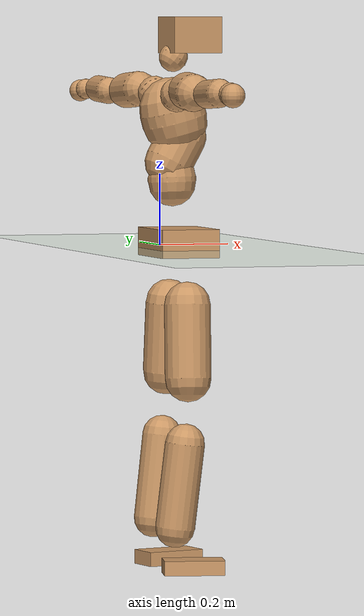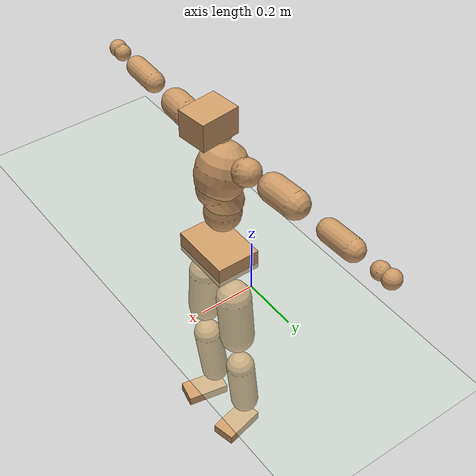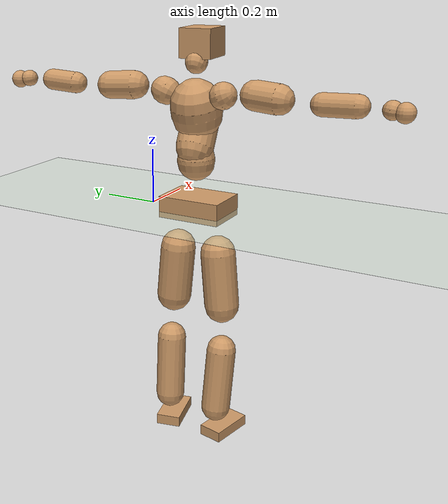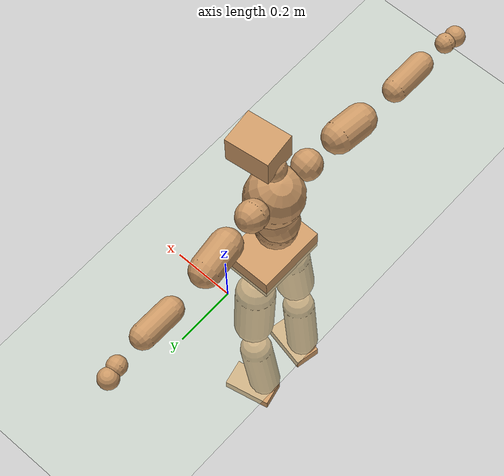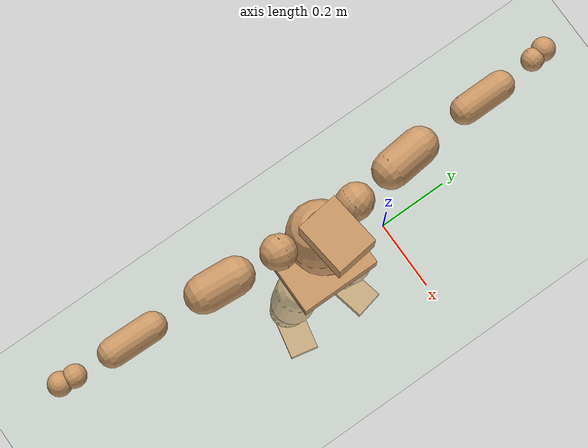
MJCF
<mujoco model="humanoid">
  <compiler coordinate="local" angle="radian"/>
  <default>
    <joint damping="0.0" armature="0.01" stiffness="0.0" limited="true"/>
    <geom conaffinity="1" condim="3" contype="7" margin="0.001" rgba="0.8 0.6 .4 1"/>
  </default>
  <asset>
    <texture type="skybox" builtin="gradient" rgb1=".4 .5 .6" rgb2="0 0 0" width="100" height="100"/>
    <texture builtin="flat" height="1278" mark="cross" markrgb="1 1 1" name="texgeom" random="0.01" rgb1="0.8 0.6 0.4" rgb2="0.8 0.6 0.4" type="cube" width="127"/>
    <texture builtin="checker" height="100" name="texplane" rgb1="0 0 0" rgb2="0.8 0.8 0.8" type="2d" width="100"/>
    <material name="MatPlane" reflectance="0.5" shininess="1" specular="1" texrepeat="60 60" texture="texplane"/>
    <material name="geom" texture="texgeom" texuniform="true"/>
  </asset>
  <worldbody>
    <light cutoff="100" diffuse="1 1 1" dir="-0 0 -1.3" directional="true" exponent="1" pos="0 0 1.3" specular=".1 .1 .1"/>
    <geom conaffinity="1" condim="3" name="floor" pos="0 0 0" rgba="0.8 0.9 0.8 1" size="100 100 .2" type="plane" material="MatPlane"/>
    <body name="Pelvis" pos="0.0002 -0.1942 0.0289">
      <freejoint name="Pelvis"/>
      <geom type="box" contype="1" conaffinity="1" density="5359.374777" pos="-0.0057 -0.0000 -0.0125" size="0.0824 0.117 0.0392" quat="1.0000 0.0000 0.0000 0.0000" name="Pelvis"/>
      <body name="L_Hip" pos="-0.0072 0.0747 -0.0891">
        <joint name="L_Hip_x" type="hinge" pos="0 0 0" axis="1 0 0" stiffness="1600" damping="160" armature="0.02" range="-180.0000 180.0000"/>
        <joint name="L_Hip_y" type="hinge" pos="0 0 0" axis="0 1 0" stiffness="1600" damping="160" armature="0.02" range="-180.0000 180.0000"/>
        <joint name="L_Hip_z" type="hinge" pos="0 0 0" axis="0 0 1" stiffness="1600" damping="160" armature="0.02" range="-180.0000 180.0000"/>
        <geom type="capsule" contype="1" conaffinity="1" density="2040.816327" size="0.0649" fromto="-0.0012 0.0083 -0.0945 -0.0037 0.0254 -0.2886" name="L_Hip"/>
        <body name="L_Knee" pos="-0.0049 0.0338 -0.3831">
          <joint name="L_Knee_x" type="hinge" pos="0 0 0" axis="1 0 0" stiffness="1600" damping="160" armature="0.02" range="-180.0000 180.0000"/>
          <joint name="L_Knee_y" type="hinge" pos="0 0 0" axis="0 1 0" stiffness="1600" damping="160" armature="0.02" range="-180.0000 180.0000"/>
          <joint name="L_Knee_z" type="hinge" pos="0 0 0" axis="0 0 1" stiffness="1600" damping="160" armature="0.02" range="-180.0000 180.0000"/>
          <geom type="capsule" contype="1" conaffinity="1" density="1234.567901" size="0.0545" fromto="-0.0097 -0.0023 -0.0840 -0.0364 -0.0086 -0.3167" name="L_Knee"/>
          <body name="L_Ankle" pos="-0.0461 -0.0109 -0.4006">
            <joint name="L_Ankle_x" type="hinge" pos="0 0 0" axis="1 0 0" stiffness="1600" damping="160" armature="0.02" range="-180.0000 180.0000"/>
            <joint name="L_Ankle_y" type="hinge" pos="0 0 0" axis="0 1 0" stiffness="1600" damping="160" armature="0.02" range="-180.0000 180.0000"/>
            <joint name="L_Ankle_z" type="hinge" pos="0 0 0" axis="0 0 1" stiffness="1600" damping="160" armature="0.02" range="-180.0000 180.0000"/>
            <geom type="box" contype="1" conaffinity="1" density="1000.000043" pos="0.0577 0.0127 -0.0280" size="0.0831 0.046 0.02" quat="0.9941 0.0000 0.0000 0.1084" name="L_Ankle"/>
            <body name="L_Toe" pos="0.1155 0.0255 -0.0561">
              <joint name="L_Toe_x" type="hinge" pos="0 0 0" axis="1 0 0" stiffness="1000" damping="100" armature="0.02" range="-180.0000 180.0000"/>
              <joint name="L_Toe_y" type="hinge" pos="0 0 0" axis="0 1 0" stiffness="1000" damping="100" armature="0.02" range="-180.0000 180.0000"/>
              <joint name="L_Toe_z" type="hinge" pos="0 0 0" axis="0 0 1" stiffness="1000" damping="100" armature="0.02" range="-180.0000 180.0000"/>
              <geom type="box" contype="1" conaffinity="1" density="8596198.526598" pos="0.0000 0.0000 0.0281" size="0.0009 0.0023 0.001" quat="0.9934 0.0000 0.0000 0.1146" name="L_Toe"/>
            </body>
          </body>
        </body>
      </body>
      <body name="R_Hip" pos="-0.0041 -0.0728 -0.088">
        <joint name="R_Hip_x" type="hinge" pos="0 0 0" axis="1 0 0" stiffness="1600" damping="160" armature="0.02" range="-180.0000 180.0000"/>
        <joint name="R_Hip_y" type="hinge" pos="0 0 0" axis="0 1 0" stiffness="1600" damping="160" armature="0.02" range="-180.0000 180.0000"/>
        <joint name="R_Hip_z" type="hinge" pos="0 0 0" axis="0 0 1" stiffness="1600" damping="160" armature="0.02" range="-180.0000 180.0000"/>
        <geom type="capsule" contype="1" conaffinity="1" density="2040.816327" size="0.0641" fromto="-0.0018 -0.0094 -0.0936 -0.0057 -0.0298 -0.2963" name="R_Hip"/>
        <body name="R_Knee" pos="-0.0075 -0.0392 -0.3899">
          <joint name="R_Knee_x" type="hinge" pos="0 0 0" axis="1 0 0" stiffness="1600" damping="160" armature="0.02" range="-180.0000 180.0000"/>
          <joint name="R_Knee_y" type="hinge" pos="0 0 0" axis="0 1 0" stiffness="1600" damping="160" armature="0.02" range="-180.0000 180.0000"/>
          <joint name="R_Knee_z" type="hinge" pos="0 0 0" axis="0 0 1" stiffness="1600" damping="160" armature="0.02" range="-180.0000 180.0000"/>
          <geom type="capsule" contype="1" conaffinity="1" density="1234.567901" size="0.0547" fromto="-0.0093 0.0028 -0.0842 -0.0352 0.0107 -0.3174" name="R_Knee"/>
          <body name="R_Ankle" pos="-0.0446 0.0135 -0.4016">
            <joint name="R_Ankle_x" type="hinge" pos="0 0 0" axis="1 0 0" stiffness="1600" damping="160" armature="0.02" range="-180.0000 180.0000"/>
            <joint name="R_Ankle_y" type="hinge" pos="0 0 0" axis="0 1 0" stiffness="1600" damping="160" armature="0.02" range="-180.0000 180.0000"/>
            <joint name="R_Ankle_z" type="hinge" pos="0 0 0" axis="0 0 1" stiffness="1600" damping="160" armature="0.02" range="-180.0000 180.0000"/>
            <geom type="box" contype="1" conaffinity="1" density="999.999989" pos="0.0594 -0.0122 -0.0242" size="0.0838 0.045 0.0203" quat="0.9948 0.0000 0.0000 -0.1014" name="R_Ankle"/>
            <body name="R_Toe" pos="0.1187 -0.0245 -0.0484">
              <joint name="R_Toe_x" type="hinge" pos="0 0 0" axis="1 0 0" stiffness="1000" damping="100" armature="0.02" range="-180.0000 180.0000"/>
              <joint name="R_Toe_y" type="hinge" pos="0 0 0" axis="0 1 0" stiffness="1000" damping="100" armature="0.02" range="-180.0000 180.0000"/>
              <joint name="R_Toe_z" type="hinge" pos="0 0 0" axis="0 0 1" stiffness="1000" damping="100" armature="0.02" range="-180.0000 180.0000"/>
              <geom type="box" contype="1" conaffinity="1" density="8506774.189372" pos="0.0000 0.0000 0.0255" size="0.0008 0.0022 0.0011" quat="0.9958 0.0000 0.0000 -0.0918" name="R_Toe"/>
            </body>
          </body>
        </body>
      </body>
      <body name="Torso" pos="-0.0232 -0.002 0.102">
        <joint name="Torso_x" type="hinge" pos="0 0 0" axis="1 0 0" stiffness="2000" damping="200" armature="0.02" range="-180.0000 180.0000"/>
        <joint name="Torso_y" type="hinge" pos="0 0 0" axis="0 1 0" stiffness="2000" damping="200" armature="0.02" range="-180.0000 180.0000"/>
        <joint name="Torso_z" type="hinge" pos="0 0 0" axis="0 0 1" stiffness="2000" damping="200" armature="0.02" range="-180.0000 180.0000"/>
        <geom type="capsule" contype="1" conaffinity="1" density="2040.816327" size="0.067" fromto="-0.0021 0.0014 0.0670 -0.0017 0.0011 0.0526" name="Torso"/>
        <body name="Spine" pos="-0.0038 0.0025 0.1196">
          <joint name="Spine_x" type="hinge" pos="0 0 0" axis="1 0 0" stiffness="2000" damping="200" armature="0.02" range="-180.0000 180.0000"/>
          <joint name="Spine_y" type="hinge" pos="0 0 0" axis="0 1 0" stiffness="2000" damping="200" armature="0.02" range="-180.0000 180.0000"/>
          <joint name="Spine_z" type="hinge" pos="0 0 0" axis="0 0 1" stiffness="2000" damping="200" armature="0.02" range="-180.0000 180.0000"/>
          <geom type="capsule" contype="1" conaffinity="1" density="2040.816327" size="0.0671" fromto="0.0326 0.0018 0.0586 -0.0070 -0.0004 -0.0126" name="Spine"/>
          <body name="Chest" pos="0.0256 0.0014 0.046">
            <joint name="Chest_x" type="hinge" pos="0 0 0" axis="1 0 0" stiffness="2000" damping="200" armature="0.02" range="-180.0000 180.0000"/>
            <joint name="Chest_y" type="hinge" pos="0 0 0" axis="0 1 0" stiffness="2000" damping="200" armature="0.02" range="-180.0000 180.0000"/>
            <joint name="Chest_z" type="hinge" pos="0 0 0" axis="0 0 1" stiffness="2000" damping="200" armature="0.02" range="-180.0000 180.0000"/>
            <geom type="capsule" contype="1" conaffinity="1" density="2040.816327" size="0.0905" fromto="-0.0239 -0.0009 0.0872 -0.0150 -0.0006 0.0549" name="Chest"/>
            <body name="Neck" pos="-0.0439 -0.0024 0.2012">
              <joint name="Neck_x" type="hinge" pos="0 0 0" axis="1 0 0" stiffness="1000" damping="100" armature="0.02" range="-180.0000 180.0000"/>
              <joint name="Neck_y" type="hinge" pos="0 0 0" axis="0 1 0" stiffness="1000" damping="100" armature="0.02" range="-180.0000 180.0000"/>
              <joint name="Neck_z" type="hinge" pos="0 0 0" axis="0 0 1" stiffness="1000" damping="100" armature="0.02" range="-180.0000 180.0000"/>
              <geom type="capsule" contype="1" conaffinity="1" density="1000" size="0.0393" fromto="0.0239 0.0020 0.0296 0.0251 0.0021 0.0312" name="Neck"/>
              <body name="Head" pos="0.049 0.0041 0.0608">
                <joint name="Head_x" type="hinge" pos="0 0 0" axis="1 0 0" stiffness="1000" damping="100" armature="0.02" range="-180.0000 180.0000"/>
                <joint name="Head_y" type="hinge" pos="0 0 0" axis="0 1 0" stiffness="1000" damping="100" armature="0.02" range="-180.0000 180.0000"/>
                <joint name="Head_z" type="hinge" pos="0 0 0" axis="0 0 1" stiffness="1000" damping="100" armature="0.02" range="-180.0000 180.0000"/>
                <geom type="box" contype="1" conaffinity="1" density="2250.000237" pos="0.0255 0.0031 0.0314" size="0.0721 0.0567 0.0501" quat="0.9982 0.0000 0.0000 0.0596" name="Head"/>
              </body>
            </body>
            <body name="L_Thorax" pos="-0.0338 0.0711 0.1133">
              <joint name="L_Thorax_x" type="hinge" pos="0 0 0" axis="1 0 0" stiffness="1000" damping="100" armature="0.02" range="-180.0000 180.0000"/>
              <joint name="L_Thorax_y" type="hinge" pos="0 0 0" axis="0 1 0" stiffness="1000" damping="100" armature="0.02" range="-180.0000 180.0000"/>
              <joint name="L_Thorax_z" type="hinge" pos="0 0 0" axis="0 0 1" stiffness="1000" damping="100" armature="0.02" range="-180.0000 180.0000"/>
              <geom type="capsule" contype="1" conaffinity="1" density="1000" size="0.0479" fromto="-0.0035 0.0440 0.0185 -0.0028 0.0357 0.0150" name="L_Thorax"/>
              <body name="L_Shoulder" pos="-0.0063 0.0797 0.0336">
                <joint name="L_Shoulder_x" type="hinge" pos="0 0 0" axis="1 0 0" stiffness="1000" damping="100" armature="0.02" range="-720.0000 720.0000"/>
                <joint name="L_Shoulder_y" type="hinge" pos="0 0 0" axis="0 1 0" stiffness="1000" damping="100" armature="0.02" range="-720.0000 720.0000"/>
                <joint name="L_Shoulder_z" type="hinge" pos="0 0 0" axis="0 0 1" stiffness="1000" damping="100" armature="0.02" range="-720.0000 720.0000"/>
                <geom type="capsule" contype="1" conaffinity="1" density="1000" size="0.0497" fromto="-0.0086 0.0791 -0.0046 -0.0189 0.1730 -0.0100" name="L_Shoulder"/>
                <body name="L_Elbow" pos="-0.0275 0.2521 -0.0146">
                  <joint name="L_Elbow_x" type="hinge" pos="0 0 0" axis="1 0 0" stiffness="1000" damping="100" armature="0.02" range="-720.0000 720.0000"/>
                  <joint name="L_Elbow_y" type="hinge" pos="0 0 0" axis="0 1 0" stiffness="1000" damping="100" armature="0.02" range="-720.0000 720.0000"/>
                  <joint name="L_Elbow_z" type="hinge" pos="0 0 0" axis="0 0 1" stiffness="1000" damping="100" armature="0.02" range="-720.0000 720.0000"/>
                  <geom type="capsule" contype="1" conaffinity="1" density="1000" size="0.0382" fromto="-0.0000 0.0681 0.0029 -0.0001 0.1750 0.0076" name="L_Elbow"/>
                  <body name="L_Wrist" pos="-0.0001 0.2431 0.0105">
                    <joint name="L_Wrist_x" type="hinge" pos="0 0 0" axis="1 0 0" stiffness="600" damping="60" armature="0.02" range="-180.0000 180.0000"/>
                    <joint name="L_Wrist_y" type="hinge" pos="0 0 0" axis="0 1 0" stiffness="600" damping="60" armature="0.02" range="-180.0000 180.0000"/>
                    <joint name="L_Wrist_z" type="hinge" pos="0 0 0" axis="0 0 1" stiffness="600" damping="60" armature="0.02" range="-180.0000 180.0000"/>
                    <geom type="capsule" contype="1" conaffinity="1" density="1000" size="0.0295" fromto="-0.0064 0.0382 -0.0048 -0.0068 0.0402 -0.0050" name="L_Wrist"/>
                    <body name="L_Hand" pos="-0.0132 0.0784 -0.0098">
                      <joint name="L_Hand_x" type="hinge" pos="0 0 0" axis="1 0 0" stiffness="600" damping="60" armature="0.02" range="-180.0000 180.0000"/>
                      <joint name="L_Hand_y" type="hinge" pos="0 0 0" axis="0 1 0" stiffness="600" damping="60" armature="0.02" range="-180.0000 180.0000"/>
                      <joint name="L_Hand_z" type="hinge" pos="0 0 0" axis="0 0 1" stiffness="600" damping="60" armature="0.02" range="-180.0000 180.0000"/>
                      <geom type="sphere" contype="1" conaffinity="1" density="1000" size="0.0316" pos="0.0000 0.0000 0.0000" name="L_Hand"/>
                    </body>
                  </body>
                </body>
              </body>
            </body>
            <body name="R_Thorax" pos="-0.0391 -0.0732 0.112">
              <joint name="R_Thorax_x" type="hinge" pos="0 0 0" axis="1 0 0" stiffness="1000" damping="100" armature="0.02" range="-180.0000 180.0000"/>
              <joint name="R_Thorax_y" type="hinge" pos="0 0 0" axis="0 1 0" stiffness="1000" damping="100" armature="0.02" range="-180.0000 180.0000"/>
              <joint name="R_Thorax_z" type="hinge" pos="0 0 0" axis="0 0 1" stiffness="1000" damping="100" armature="0.02" range="-180.0000 180.0000"/>
              <geom type="capsule" contype="1" conaffinity="1" density="1000" size="0.0469" fromto="-0.0042 -0.0432 0.0178 -0.0040 -0.0406 0.0167" name="R_Thorax"/>
              <body name="R_Shoulder" pos="-0.0082 -0.0838 0.0344">
                <joint name="R_Shoulder_x" type="hinge" pos="0 0 0" axis="1 0 0" stiffness="1000" damping="100" armature="0.02" range="-720.0000 720.0000"/>
                <joint name="R_Shoulder_y" type="hinge" pos="0 0 0" axis="0 1 0" stiffness="1000" damping="100" armature="0.02" range="-720.0000 720.0000"/>
                <joint name="R_Shoulder_z" type="hinge" pos="0 0 0" axis="0 0 1" stiffness="1000" damping="100" armature="0.02" range="-720.0000 720.0000"/>
                <geom type="capsule" contype="1" conaffinity="1" density="1000" size="0.0507" fromto="-0.0071 -0.0803 -0.0046 -0.0148 -0.1677 -0.0097" name="R_Shoulder"/>
                <body name="R_Elbow" pos="-0.0219 -0.248 -0.0143">
                  <joint name="R_Elbow_x" type="hinge" pos="0 0 0" axis="1 0 0" stiffness="1000" damping="100" armature="0.02" range="-720.0000 720.0000"/>
                  <joint name="R_Elbow_y" type="hinge" pos="0 0 0" axis="0 1 0" stiffness="1000" damping="100" armature="0.02" range="-720.0000 720.0000"/>
                  <joint name="R_Elbow_z" type="hinge" pos="0 0 0" axis="0 0 1" stiffness="1000" damping="100" armature="0.02" range="-720.0000 720.0000"/>
                  <geom type="capsule" contype="1" conaffinity="1" density="1000" size="0.0382" fromto="-0.0011 -0.0681 0.0024 -0.0029 -0.1825 0.0065" name="R_Elbow"/>
                  <body name="R_Wrist" pos="-0.004 -0.2506 0.0089">
                    <joint name="R_Wrist_x" type="hinge" pos="0 0 0" axis="1 0 0" stiffness="600" damping="60" armature="0.02" range="-180.0000 180.0000"/>
                    <joint name="R_Wrist_y" type="hinge" pos="0 0 0" axis="0 1 0" stiffness="600" damping="60" armature="0.02" range="-180.0000 180.0000"/>
                    <joint name="R_Wrist_z" type="hinge" pos="0 0 0" axis="0 0 1" stiffness="600" damping="60" armature="0.02" range="-180.0000 180.0000"/>
                    <geom type="capsule" contype="1" conaffinity="1" density="1000" size="0.0303" fromto="-0.0051 -0.0386 -0.0035 -0.0053 -0.0406 -0.0037" name="R_Wrist"/>
                    <body name="R_Hand" pos="-0.0104 -0.0793 -0.0072">
                      <joint name="R_Hand_x" type="hinge" pos="0 0 0" axis="1 0 0" stiffness="600" damping="60" armature="0.02" range="-180.0000 180.0000"/>
                      <joint name="R_Hand_y" type="hinge" pos="0 0 0" axis="0 1 0" stiffness="600" damping="60" armature="0.02" range="-180.0000 180.0000"/>
                      <joint name="R_Hand_z" type="hinge" pos="0 0 0" axis="0 0 1" stiffness="600" damping="60" armature="0.02" range="-180.0000 180.0000"/>
                      <geom type="sphere" contype="1" conaffinity="1" density="1000" size="0.0319" pos="0.0000 0.0000 0.0000" name="R_Hand"/>
                    </body>
                  </body>
                </body>
              </body>
            </body>
          </body>
        </body>
      </body>
    </body>
  </worldbody>
  <actuator>
    <motor name="L_Hip_x" joint="L_Hip_x" gear="500"/>
    <motor name="L_Hip_y" joint="L_Hip_y" gear="500"/>
    <motor name="L_Hip_z" joint="L_Hip_z" gear="500"/>
    <motor name="L_Knee_x" joint="L_Knee_x" gear="500"/>
    <motor name="L_Knee_y" joint="L_Knee_y" gear="500"/>
    <motor name="L_Knee_z" joint="L_Knee_z" gear="500"/>
    <motor name="L_Ankle_x" joint="L_Ankle_x" gear="500"/>
    <motor name="L_Ankle_y" joint="L_Ankle_y" gear="500"/>
    <motor name="L_Ankle_z" joint="L_Ankle_z" gear="500"/>
    <motor name="L_Toe_x" joint="L_Toe_x" gear="500"/>
    <motor name="L_Toe_y" joint="L_Toe_y" gear="500"/>
    <motor name="L_Toe_z" joint="L_Toe_z" gear="500"/>
    <motor name="R_Hip_x" joint="R_Hip_x" gear="500"/>
    <motor name="R_Hip_y" joint="R_Hip_y" gear="500"/>
    <motor name="R_Hip_z" joint="R_Hip_z" gear="500"/>
    <motor name="R_Knee_x" joint="R_Knee_x" gear="500"/>
    <motor name="R_Knee_y" joint="R_Knee_y" gear="500"/>
    <motor name="R_Knee_z" joint="R_Knee_z" gear="500"/>
    <motor name="R_Ankle_x" joint="R_Ankle_x" gear="500"/>
    <motor name="R_Ankle_y" joint="R_Ankle_y" gear="500"/>
    <motor name="R_Ankle_z" joint="R_Ankle_z" gear="500"/>
    <motor name="R_Toe_x" joint="R_Toe_x" gear="500"/>
    <motor name="R_Toe_y" joint="R_Toe_y" gear="500"/>
    <motor name="R_Toe_z" joint="R_Toe_z" gear="500"/>
    <motor name="Torso_x" joint="Torso_x" gear="500"/>
    <motor name="Torso_y" joint="Torso_y" gear="500"/>
    <motor name="Torso_z" joint="Torso_z" gear="500"/>
    <motor name="Spine_x" joint="Spine_x" gear="500"/>
    <motor name="Spine_y" joint="Spine_y" gear="500"/>
    <motor name="Spine_z" joint="Spine_z" gear="500"/>
    <motor name="Chest_x" joint="Chest_x" gear="500"/>
    <motor name="Chest_y" joint="Chest_y" gear="500"/>
    <motor name="Chest_z" joint="Chest_z" gear="500"/>
    <motor name="Neck_x" joint="Neck_x" gear="500"/>
    <motor name="Neck_y" joint="Neck_y" gear="500"/>
    <motor name="Neck_z" joint="Neck_z" gear="500"/>
    <motor name="Head_x" joint="Head_x" gear="500"/>
    <motor name="Head_y" joint="Head_y" gear="500"/>
    <motor name="Head_z" joint="Head_z" gear="500"/>
    <motor name="L_Thorax_x" joint="L_Thorax_x" gear="500"/>
    <motor name="L_Thorax_y" joint="L_Thorax_y" gear="500"/>
    <motor name="L_Thorax_z" joint="L_Thorax_z" gear="500"/>
    <motor name="L_Shoulder_x" joint="L_Shoulder_x" gear="500"/>
    <motor name="L_Shoulder_y" joint="L_Shoulder_y" gear="500"/>
    <motor name="L_Shoulder_z" joint="L_Shoulder_z" gear="500"/>
    <motor name="L_Elbow_x" joint="L_Elbow_x" gear="500"/>
    <motor name="L_Elbow_y" joint="L_Elbow_y" gear="500"/>
    <motor name="L_Elbow_z" joint="L_Elbow_z" gear="500"/>
    <motor name="L_Wrist_x" joint="L_Wrist_x" gear="500"/>
    <motor name="L_Wrist_y" joint="L_Wrist_y" gear="500"/>
    <motor name="L_Wrist_z" joint="L_Wrist_z" gear="500"/>
    <motor name="L_Hand_x" joint="L_Hand_x" gear="500"/>
    <motor name="L_Hand_y" joint="L_Hand_y" gear="500"/>
    <motor name="L_Hand_z" joint="L_Hand_z" gear="500"/>
    <motor name="R_Thorax_x" joint="R_Thorax_x" gear="500"/>
    <motor name="R_Thorax_y" joint="R_Thorax_y" gear="500"/>
    <motor name="R_Thorax_z" joint="R_Thorax_z" gear="500"/>
    <motor name="R_Shoulder_x" joint="R_Shoulder_x" gear="500"/>
    <motor name="R_Shoulder_y" joint="R_Shoulder_y" gear="500"/>
    <motor name="R_Shoulder_z" joint="R_Shoulder_z" gear="500"/>
    <motor name="R_Elbow_x" joint="R_Elbow_x" gear="500"/>
    <motor name="R_Elbow_y" joint="R_Elbow_y" gear="500"/>
    <motor name="R_Elbow_z" joint="R_Elbow_z" gear="500"/>
    <motor name="R_Wrist_x" joint="R_Wrist_x" gear="500"/>
    <motor name="R_Wrist_y" joint="R_Wrist_y" gear="500"/>
    <motor name="R_Wrist_z" joint="R_Wrist_z" gear="500"/>
    <motor name="R_Hand_x" joint="R_Hand_x" gear="500"/>
    <motor name="R_Hand_y" joint="R_Hand_y" gear="500"/>
    <motor name="R_Hand_z" joint="R_Hand_z" gear="500"/>
  </actuator>
  <contact>
    <exclude body1="Torso" body2="Chest"/>
    <exclude body1="Head" body2="Chest"/>
    <exclude body1="R_Knee" body2="R_Toe"/>
    <exclude body1="R_Knee" body2="L_Ankle"/>
    <exclude body1="R_Knee" body2="L_Toe"/>
    <exclude body1="L_Knee" body2="L_Toe"/>
    <exclude body1="L_Knee" body2="R_Ankle"/>
    <exclude body1="L_Knee" body2="R_Toe"/>
    <exclude body1="L_Shoulder" body2="Chest"/>
    <exclude body1="R_Shoulder" body2="Chest"/>
  </contact>
  <sensor/>
  <size njmax="700" nconmax="700"/>
</mujoco>
